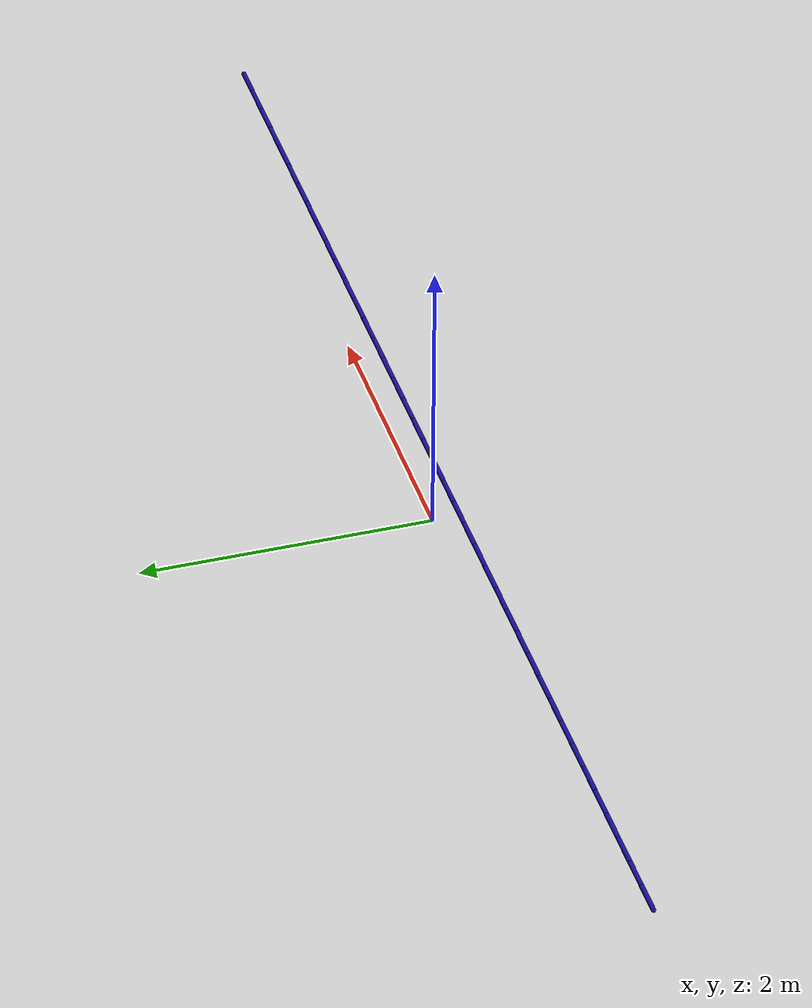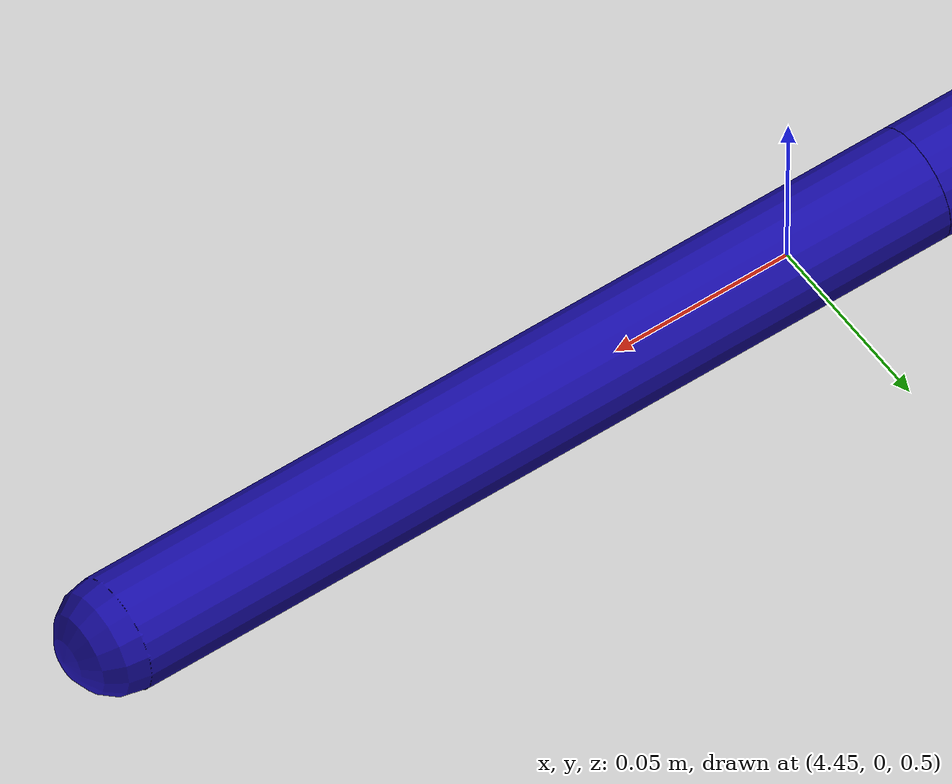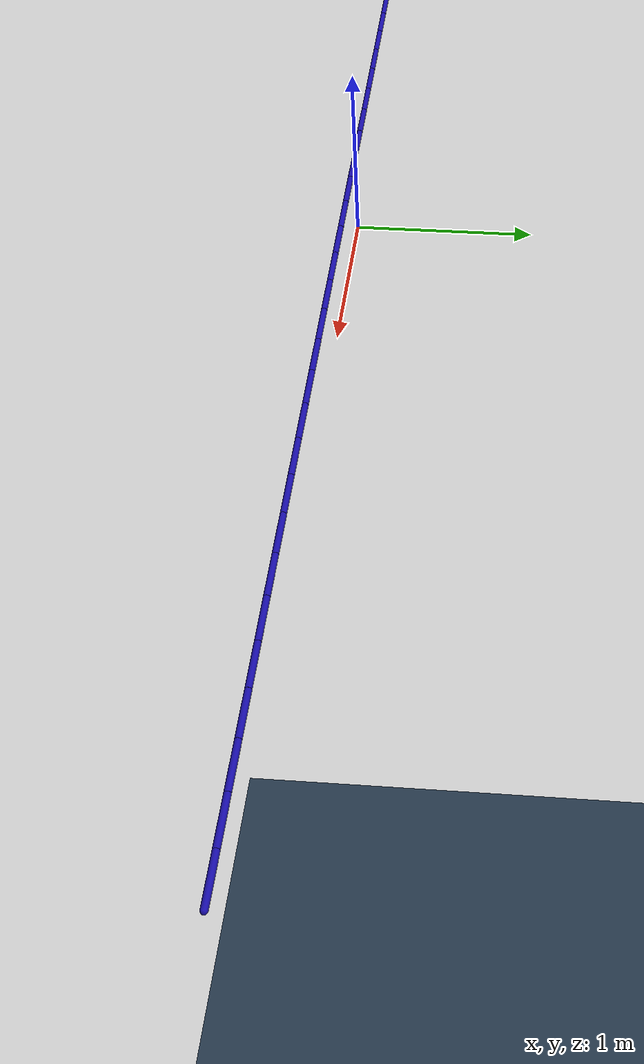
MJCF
<mujoco model="base">
  <compiler angle="radian"/>

  <option timestep="0.0015" tolerance="1e-10" integrator="implicit" cone="elliptic" jacobian="sparse" iterations="30"/>

  <size njmax="5000" nconmax="5000"/>

  <visual>
    <quality shadowsize="2048"/>
    <map stiffness="700" fogstart="10" fogend="15" znear="0.001" zfar="40" shadowscale="0.5"/>
    <rgba haze="0.15 0.25 0.35 1"/>
  </visual>

  <statistic meansize="0.05" extent="2"/>

  <asset>
    <texture type="skybox" builtin="gradient" rgb1="1 1 0.9" rgb2="0.9 0.9 0.81" width="512" height="3072"/>
    <texture type="2d" name="texplane" builtin="checker" mark="cross" rgb1="0.2 0.3 0.4" rgb2="0.1 0.15 0.2" markrgb="0.8 0.8 0.8" width="512" height="512"/>
    <material name="matplane" texture="texplane" texuniform="true" reflectance="0.3"/>
  </asset>

  <worldbody>
    <geom name="floor" size="3 3 0.125" pos="0 0 -10" type="plane" condim="1" material="matplane"/>
    <camera pos="0 -1 1.5" quat="0.866019 0.500011 0 0"/>
    <camera pos="1 -1.2 0.8" quat="0.687095 0.527073 0.304042 0.397055"/>
    <camera pos="-1.8 -1.1 0.7" quat="0.732963 0.562422 -0.232963 -0.303603"/>
    <camera pos="-1 -1.5 0.5" quat="0.707107 0.707107 0 0"/>
    <camera pos="9.7 -1 1.1" quat="0.687095 0.527073 0.304042 0.397055"/>
    <camera pos="4.5 -8 0.5" quat="0.707107 0.707107 0 0"/>
    <light pos="0 0 5" dir="0 0 -1" directional="true" castshadow="false" diffuse="0.4 0.4 0.4" specular="0.1 0.1 0.1"/>
    <light pos="0 0 4" dir="0 0 -1" directional="true" diffuse="0.6 0.6 0.6" specular="0.2 0.2 0.2"/>
    <body name="eef_body" pos="-4.645 0 0.5">
      <geom name="eef_geom" size="0.03 0.03 0.06" type="box" contype="0" conaffinity="0" mass="1" rgba="0.8 0.2 0.1 0"/>
    </body>
    <body name="eef_body2" pos="4.645 0 0.5">
      <geom name="eef_geom2" size="0.03 0.03 0.06" type="box" contype="0" conaffinity="0" mass="1" rgba="0.8 0.2 0.1 0"/>
    </body>
    <body name="stiffrope" pos="4.645 0 0.5" quat="0 0 1 0">
      <joint name="freejoint_A" type="free" limited="false" actuatorfrclimited="false"/>
      <site name="ft_rope" pos="0 0 0" size="0.03" group="1" rgba="1 0 0 0"/>
      <body name="B_first">
        <geom name="G0" size="0.015 0.1161" pos="0.116125 0 0" quat="0.707107 0 -0.707107 0" type="capsule" contype="0" conaffinity="0" condim="1" solref="0.001" rgba="0.1 0.0533333 0.673333 1"/>
        <site name="S_first" pos="0 0 0" size="0.0135"/>
        <site name="S_0" pos="0 0 0" size="0.0135" rgba="0 0 0 0"/>
        <site name="twistcylx_1" pos="0 0 0.05" quat="0.707107 0 0 -0.707107" size="0.001 0.05" group="1" type="cylinder" rgba="0 0 1 0"/>
        <site name="twistcyly_1" pos="0 0.05 0" quat="0.707107 -0.707107 0 0" size="0.001 0.05" group="1" type="cylinder" rgba="1 1 0 0"/>
        <body name="B_1" pos="0.23225 0 0">
          <joint name="J_1" pos="0 0 0" type="ball" actuatorfrclimited="false" damping="1"/>
          <geom name="G1" size="0.015 0.1161" pos="0.116125 0 0" quat="0.707107 0 -0.707107 0" type="capsule" contype="0" conaffinity="0" condim="1" solref="0.001" rgba="0.1 0.0533333 0.673333 1"/>
          <site name="S_1" pos="0 0 0" size="0.0135" rgba="0 0 0 0"/>
          <body name="B_2" pos="0.23225 0 0">
            <joint name="J_2" pos="0 0 0" type="ball" actuatorfrclimited="false" damping="1"/>
            <geom name="G2" size="0.015 0.1161" pos="0.116125 0 0" quat="0.707107 0 -0.707107 0" type="capsule" contype="0" conaffinity="0" condim="1" solref="0.001" rgba="0.1 0.0533333 0.673333 1"/>
            <site name="S_2" pos="0 0 0" size="0.0135" rgba="0 0 0 0"/>
            <body name="B_3" pos="0.23225 0 0">
              <joint name="J_3" pos="0 0 0" type="ball" actuatorfrclimited="false" damping="1"/>
              <geom name="G3" size="0.015 0.1161" pos="0.116125 0 0" quat="0.707107 0 -0.707107 0" type="capsule" contype="0" conaffinity="0" condim="1" solref="0.001" rgba="0.1 0.0533333 0.673333 1"/>
              <site name="S_3" pos="0 0 0" size="0.0135" rgba="0 0 0 0"/>
              <body name="B_4" pos="0.23225 0 0">
                <joint name="J_4" pos="0 0 0" type="ball" actuatorfrclimited="false" damping="1"/>
                <geom name="G4" size="0.015 0.1161" pos="0.116125 0 0" quat="0.707107 0 -0.707107 0" type="capsule" contype="0" conaffinity="0" condim="1" solref="0.001" rgba="0.1 0.0533333 0.673333 1"/>
                <site name="S_4" pos="0 0 0" size="0.0135" rgba="0 0 0 0"/>
                <body name="B_5" pos="0.23225 0 0">
                  <joint name="J_5" pos="0 0 0" type="ball" actuatorfrclimited="false" damping="1"/>
                  <geom name="G5" size="0.015 0.1161" pos="0.116125 0 0" quat="0.707107 0 -0.707107 0" type="capsule" contype="0" conaffinity="0" condim="1" solref="0.001" rgba="0.1 0.0533333 0.673333 1"/>
                  <site name="S_5" pos="0 0 0" size="0.0135" rgba="0 0 0 0"/>
                  <body name="B_6" pos="0.23225 0 0">
                    <joint name="J_6" pos="0 0 0" type="ball" actuatorfrclimited="false" damping="1"/>
                    <geom name="G6" size="0.015 0.1161" pos="0.116125 0 0" quat="0.707107 0 -0.707107 0" type="capsule" contype="0" conaffinity="0" condim="1" solref="0.001" rgba="0.1 0.0533333 0.673333 1"/>
                    <site name="S_6" pos="0 0 0" size="0.0135" rgba="0 0 0 0"/>
                    <body name="B_7" pos="0.23225 0 0">
                      <joint name="J_7" pos="0 0 0" type="ball" actuatorfrclimited="false" damping="1"/>
                      <geom name="G7" size="0.015 0.1161" pos="0.116125 0 0" quat="0.707107 0 -0.707107 0" type="capsule" contype="0" conaffinity="0" condim="1" solref="0.001" rgba="0.1 0.0533333 0.673333 1"/>
                      <site name="S_7" pos="0 0 0" size="0.0135" rgba="0 0 0 0"/>
                      <body name="B_8" pos="0.23225 0 0">
                        <joint name="J_8" pos="0 0 0" type="ball" actuatorfrclimited="false" damping="1"/>
                        <geom name="G8" size="0.015 0.1161" pos="0.116125 0 0" quat="0.707107 0 -0.707107 0" type="capsule" contype="0" conaffinity="0" condim="1" solref="0.001" rgba="0.1 0.0533333 0.673333 1"/>
                        <site name="S_8" pos="0 0 0" size="0.0135" rgba="0 0 0 0"/>
                        <body name="B_9" pos="0.23225 0 0">
                          <joint name="J_9" pos="0 0 0" type="ball" actuatorfrclimited="false" damping="1"/>
                          <geom name="G9" size="0.015 0.1161" pos="0.116125 0 0" quat="0.707107 0 -0.707107 0" type="capsule" contype="0" conaffinity="0" condim="1" solref="0.001" rgba="0.1 0.0533333 0.673333 1"/>
                          <site name="S_9" pos="0 0 0" size="0.0135" rgba="0 0 0 0"/>
                          <body name="B_10" pos="0.23225 0 0">
                            <joint name="J_10" pos="0 0 0" type="ball" actuatorfrclimited="false" damping="1"/>
                            <geom name="G10" size="0.015 0.1161" pos="0.116125 0 0" quat="0.707107 0 -0.707107 0" type="capsule" contype="0" conaffinity="0" condim="1" solref="0.001" rgba="0.1 0.0533333 0.673333 1"/>
                            <site name="S_10" pos="0 0 0" size="0.0135" rgba="0 0 0 0"/>
                            <body name="B_11" pos="0.23225 0 0">
                              <joint name="J_11" pos="0 0 0" type="ball" actuatorfrclimited="false" damping="1"/>
                              <geom name="G11" size="0.015 0.1161" pos="0.116125 0 0" quat="0.707107 0 -0.707107 0" type="capsule" contype="0" conaffinity="0" condim="1" solref="0.001" rgba="0.1 0.0533333 0.673333 1"/>
                              <site name="S_11" pos="0 0 0" size="0.0135" rgba="0 0 0 0"/>
                              <body name="B_12" pos="0.23225 0 0">
                                <joint name="J_12" pos="0 0 0" type="ball" actuatorfrclimited="false" damping="1"/>
                                <geom name="G12" size="0.015 0.1161" pos="0.116125 0 0" quat="0.707107 0 -0.707107 0" type="capsule" contype="0" conaffinity="0" condim="1" solref="0.001" rgba="0.1 0.0533333 0.673333 1"/>
                                <site name="S_12" pos="0 0 0" size="0.0135" rgba="0 0 0 0"/>
                                <body name="B_13" pos="0.23225 0 0">
                                  <joint name="J_13" pos="0 0 0" type="ball" actuatorfrclimited="false" damping="1"/>
                                  <geom name="G13" size="0.015 0.1161" pos="0.116125 0 0" quat="0.707107 0 -0.707107 0" type="capsule" contype="0" conaffinity="0" condim="1" solref="0.001" rgba="0.1 0.0533333 0.673333 1"/>
                                  <site name="S_13" pos="0 0 0" size="0.0135" rgba="0 0 0 0"/>
                                  <body name="B_14" pos="0.23225 0 0">
                                    <joint name="J_14" pos="0 0 0" type="ball" actuatorfrclimited="false" damping="1"/>
                                    <geom name="G14" size="0.015 0.1161" pos="0.116125 0 0" quat="0.707107 0 -0.707107 0" type="capsule" contype="0" conaffinity="0" condim="1" solref="0.001" rgba="0.1 0.0533333 0.673333 1"/>
                                    <site name="S_14" pos="0 0 0" size="0.0135" rgba="0 0 0 0"/>
                                    <body name="B_15" pos="0.23225 0 0">
                                      <joint name="J_15" pos="0 0 0" type="ball" actuatorfrclimited="false" damping="1"/>
                                      <geom name="G15" size="0.015 0.1161" pos="0.116125 0 0" quat="0.707107 0 -0.707107 0" type="capsule" contype="0" conaffinity="0" condim="1" solref="0.001" rgba="0.1 0.0533333 0.673333 1"/>
                                      <site name="S_15" pos="0 0 0" size="0.0135" rgba="0 0 0 0"/>
                                      <body name="B_16" pos="0.23225 0 0">
                                        <joint name="J_16" pos="0 0 0" type="ball" actuatorfrclimited="false" damping="1"/>
                                        <geom name="G16" size="0.015 0.1161" pos="0.116125 0 0" quat="0.707107 0 -0.707107 0" type="capsule" contype="0" conaffinity="0" condim="1" solref="0.001" rgba="0.1 0.0533333 0.673333 1"/>
                                        <site name="S_16" pos="0 0 0" size="0.0135" rgba="0 0 0 0"/>
                                        <body name="B_17" pos="0.23225 0 0">
                                          <joint name="J_17" pos="0 0 0" type="ball" actuatorfrclimited="false" damping="1"/>
                                          <geom name="G17" size="0.015 0.1161" pos="0.116125 0 0" quat="0.707107 0 -0.707107 0" type="capsule" contype="0" conaffinity="0" condim="1" solref="0.001" rgba="0.1 0.0533333 0.673333 1"/>
                                          <site name="S_17" pos="0 0 0" size="0.0135" rgba="0 0 0 0"/>
                                          <body name="B_18" pos="0.23225 0 0">
                                            <joint name="J_18" pos="0 0 0" type="ball" actuatorfrclimited="false" damping="1"/>
                                            <geom name="G18" size="0.015 0.1161" pos="0.116125 0 0" quat="0.707107 0 -0.707107 0" type="capsule" contype="0" conaffinity="0" condim="1" solref="0.001" rgba="0.1 0.0533333 0.673333 1"/>
                                            <site name="S_18" pos="0 0 0" size="0.0135" rgba="0 0 0 0"/>
                                            <body name="B_19" pos="0.23225 0 0">
                                              <joint name="J_19" pos="0 0 0" type="ball" actuatorfrclimited="false" damping="1"/>
                                              <geom name="G19" size="0.015 0.1161" pos="0.116125 0 0" quat="0.707107 0 -0.707107 0" type="capsule" contype="0" conaffinity="0" condim="1" solref="0.001" rgba="0.1 0.0533333 0.673333 1"/>
                                              <site name="S_19" pos="0 0 0" size="0.0135" rgba="0 0 0 0"/>
                                              <body name="B_20" pos="0.23225 0 0">
                                                <joint name="J_20" pos="0 0 0" type="ball" actuatorfrclimited="false" damping="1"/>
                                                <geom name="G20" size="0.015 0.1161" pos="0.116125 0 0" quat="0.707107 0 -0.707107 0" type="capsule" contype="0" conaffinity="0" condim="1" solref="0.001" rgba="0.1 0.0533333 0.673333 1"/>
                                                <site name="S_20" pos="0 0 0" size="0.0135" rgba="0 0 0 0"/>
                                                <site name="twistcylx_21" pos="0 0 0.05" quat="0.707107 0 0 -0.707107" size="0.001 0.05" group="1" type="cylinder" rgba="0 0 1 0"/>
                                                <site name="twistcyly_21" pos="0 0.05 0" quat="0.707107 -0.707107 0 0" size="0.001 0.05" group="1" type="cylinder" rgba="1 1 0 0"/>
                                                <body name="B_21" pos="0.23225 0 0">
                                                  <joint name="J_21" pos="0 0 0" type="ball" actuatorfrclimited="false" damping="1"/>
                                                  <geom name="G21" size="0.015 0.1161" pos="0.116125 0 0" quat="0.707107 0 -0.707107 0" type="capsule" contype="0" conaffinity="0" condim="1" solref="0.001" rgba="0.1 0.0533333 0.673333 1"/>
                                                  <site name="S_21" pos="0 0 0" size="0.0135" rgba="0 0 0 0"/>
                                                  <body name="B_22" pos="0.23225 0 0">
                                                    <joint name="J_22" pos="0 0 0" type="ball" actuatorfrclimited="false" damping="1"/>
                                                    <geom name="G22" size="0.015 0.1161" pos="0.116125 0 0" quat="0.707107 0 -0.707107 0" type="capsule" contype="0" conaffinity="0" condim="1" solref="0.001" rgba="0.1 0.0533333 0.673333 1"/>
                                                    <site name="S_22" pos="0 0 0" size="0.0135" rgba="0 0 0 0"/>
                                                    <body name="B_23" pos="0.23225 0 0">
                                                      <joint name="J_23" pos="0 0 0" type="ball" actuatorfrclimited="false" damping="1"/>
                                                      <geom name="G23" size="0.015 0.1161" pos="0.116125 0 0" quat="0.707107 0 -0.707107 0" type="capsule" contype="0" conaffinity="0" condim="1" solref="0.001" rgba="0.1 0.0533333 0.673333 1"/>
                                                      <site name="S_23" pos="0 0 0" size="0.0135" rgba="0 0 0 0"/>
                                                      <body name="B_24" pos="0.23225 0 0">
                                                        <joint name="J_24" pos="0 0 0" type="ball" actuatorfrclimited="false" damping="1"/>
                                                        <geom name="G24" size="0.015 0.1161" pos="0.116125 0 0" quat="0.707107 0 -0.707107 0" type="capsule" contype="0" conaffinity="0" condim="1" solref="0.001" rgba="0.1 0.0533333 0.673333 1"/>
                                                        <site name="S_24" pos="0 0 0" size="0.0135" rgba="0 0 0 0"/>
                                                        <body name="B_25" pos="0.23225 0 0">
                                                          <joint name="J_25" pos="0 0 0" type="ball" actuatorfrclimited="false" damping="1"/>
                                                          <geom name="G25" size="0.015 0.1161" pos="0.116125 0 0" quat="0.707107 0 -0.707107 0" type="capsule" contype="0" conaffinity="0" condim="1" solref="0.001" rgba="0.1 0.0533333 0.673333 1"/>
                                                          <site name="S_25" pos="0 0 0" size="0.0135" rgba="0 0 0 0"/>
                                                          <body name="B_26" pos="0.23225 0 0">
                                                            <joint name="J_26" pos="0 0 0" type="ball" actuatorfrclimited="false" damping="1"/>
                                                            <geom name="G26" size="0.015 0.1161" pos="0.116125 0 0" quat="0.707107 0 -0.707107 0" type="capsule" contype="0" conaffinity="0" condim="1" solref="0.001" rgba="0.1 0.0533333 0.673333 1"/>
                                                            <site name="S_26" pos="0 0 0" size="0.0135" rgba="0 0 0 0"/>
                                                            <body name="B_27" pos="0.23225 0 0">
                                                              <joint name="J_27" pos="0 0 0" type="ball" actuatorfrclimited="false" damping="1"/>
                                                              <geom name="G27" size="0.015 0.1161" pos="0.116125 0 0" quat="0.707107 0 -0.707107 0" type="capsule" contype="0" conaffinity="0" condim="1" solref="0.001" rgba="0.1 0.0533333 0.673333 1"/>
                                                              <site name="S_27" pos="0 0 0" size="0.0135" rgba="0 0 0 0"/>
                                                              <body name="B_28" pos="0.23225 0 0">
                                                                <joint name="J_28" pos="0 0 0" type="ball" actuatorfrclimited="false" damping="1"/>
                                                                <geom name="G28" size="0.015 0.1161" pos="0.116125 0 0" quat="0.707107 0 -0.707107 0" type="capsule" contype="0" conaffinity="0" condim="1" solref="0.001" rgba="0.1 0.0533333 0.673333 1"/>
                                                                <site name="S_28" pos="0 0 0" size="0.0135" rgba="0 0 0 0"/>
                                                                <body name="B_29" pos="0.23225 0 0">
                                                                  <joint name="J_29" pos="0 0 0" type="ball" actuatorfrclimited="false" damping="1"/>
                                                                  <geom name="G29" size="0.015 0.1161" pos="0.116125 0 0" quat="0.707107 0 -0.707107 0" type="capsule" contype="0" conaffinity="0" condim="1" solref="0.001" rgba="0.1 0.0533333 0.673333 1"/>
                                                                  <site name="S_29" pos="0 0 0" size="0.0135" rgba="0 0 0 0"/>
                                                                  <body name="B_30" pos="0.23225 0 0">
                                                                    <joint name="J_30" pos="0 0 0" type="ball" actuatorfrclimited="false" damping="1"/>
                                                                    <geom name="G30" size="0.015 0.1161" pos="0.116125 0 0" quat="0.707107 0 -0.707107 0" type="capsule" contype="0" conaffinity="0" condim="1" solref="0.001" rgba="0.1 0.0533333 0.673333 1"/>
                                                                    <site name="S_30" pos="0 0 0" size="0.0135" rgba="0 0 0 0"/>
                                                                    <body name="B_31" pos="0.23225 0 0">
                                                                      <joint name="J_31" pos="0 0 0" type="ball" actuatorfrclimited="false" damping="1"/>
                                                                      <geom name="G31" size="0.015 0.1161" pos="0.116125 0 0" quat="0.707107 0 -0.707107 0" type="capsule" contype="0" conaffinity="0" condim="1" solref="0.001" rgba="0.1 0.0533333 0.673333 1"/>
                                                                      <site name="S_31" pos="0 0 0" size="0.0135" rgba="0 0 0 0"/>
                                                                      <body name="B_32" pos="0.23225 0 0">
                                                                        <joint name="J_32" pos="0 0 0" type="ball" actuatorfrclimited="false" damping="1"/>
                                                                        <geom name="G32" size="0.015 0.1161" pos="0.116125 0 0" quat="0.707107 0 -0.707107 0" type="capsule" contype="0" conaffinity="0" condim="1" solref="0.001" rgba="0.1 0.0533333 0.673333 1"/>
                                                                        <site name="S_32" pos="0 0 0" size="0.0135" rgba="0 0 0 0"/>
                                                                        <body name="B_33" pos="0.23225 0 0">
                                                                          <joint name="J_33" pos="0 0 0" type="ball" actuatorfrclimited="false" damping="1"/>
                                                                          <geom name="G33" size="0.015 0.1161" pos="0.116125 0 0" quat="0.707107 0 -0.707107 0" type="capsule" contype="0" conaffinity="0" condim="1" solref="0.001" rgba="0.1 0.0533333 0.673333 1"/>
                                                                          <site name="S_33" pos="0 0 0" size="0.0135" rgba="0 0 0 0"/>
                                                                          <body name="B_34" pos="0.23225 0 0">
                                                                            <joint name="J_34" pos="0 0 0" type="ball" actuatorfrclimited="false" damping="1"/>
                                                                            <geom name="G34" size="0.015 0.1161" pos="0.116125 0 0" quat="0.707107 0 -0.707107 0" type="capsule" contype="0" conaffinity="0" condim="1" solref="0.001" rgba="0.1 0.0533333 0.673333 1"/>
                                                                            <site name="S_34" pos="0 0 0" size="0.0135" rgba="0 0 0 0"/>
                                                                            <body name="B_35" pos="0.23225 0 0">
                                                                              <joint name="J_35" pos="0 0 0" type="ball" actuatorfrclimited="false" damping="1"/>
                                                                              <geom name="G35" size="0.015 0.1161" pos="0.116125 0 0" quat="0.707107 0 -0.707107 0" type="capsule" contype="0" conaffinity="0" condim="1" solref="0.001" rgba="0.1 0.0533333 0.673333 1"/>
                                                                              <site name="S_35" pos="0 0 0" size="0.0135" rgba="0 0 0 0"/>
                                                                              <body name="B_36" pos="0.23225 0 0">
                                                                                <joint name="J_36" pos="0 0 0" type="ball" actuatorfrclimited="false" damping="1"/>
                                                                                <geom name="G36" size="0.015 0.1161" pos="0.116125 0 0" quat="0.707107 0 -0.707107 0" type="capsule" contype="0" conaffinity="0" condim="1" solref="0.001" rgba="0.1 0.0533333 0.673333 1"/>
                                                                                <site name="S_36" pos="0 0 0" size="0.0135" rgba="0 0 0 0"/>
                                                                                <body name="B_37" pos="0.23225 0 0">
                                                                                  <joint name="J_37" pos="0 0 0" type="ball" actuatorfrclimited="false" damping="1"/>
                                                                                  <geom name="G37" size="0.015 0.1161" pos="0.116125 0 0" quat="0.707107 0 -0.707107 0" type="capsule" contype="0" conaffinity="0" condim="1" solref="0.001" rgba="0.1 0.0533333 0.673333 1"/>
                                                                                  <site name="S_37" pos="0 0 0" size="0.0135" rgba="0 0 0 0"/>
                                                                                  <body name="B_38" pos="0.23225 0 0">
                                                                                    <joint name="J_38" pos="0 0 0" type="ball" actuatorfrclimited="false" damping="1"/>
                                                                                    <geom name="G38" size="0.015 0.1161" pos="0.116125 0 0" quat="0.707107 0 -0.707107 0" type="capsule" contype="0" conaffinity="0" condim="1" solref="0.001" rgba="0.1 0.0533333 0.673333 1"/>
                                                                                    <site name="S_38" pos="0 0 0" size="0.0135" rgba="0 0 0 0"/>
                                                                                    <body name="B_last" pos="0.23225 0 0">
                                                                                      <joint name="J_last" pos="0 0 0" type="ball" actuatorfrclimited="false" damping="1"/>
                                                                                      <geom name="G39" size="0.015 0.1161" pos="0.116125 0 0" quat="0.707107 0 -0.707107 0" type="capsule" contype="0" conaffinity="0" condim="1" solref="0.001" rgba="0.1 0.0533333 0.673333 1"/>
                                                                                      <site name="S_39" pos="0 0 0" size="0.0135" rgba="0 0 0 0"/>
                                                                                      <site name="twistcylx_40" pos="0 0 0.05" quat="0.707107 0 0 -0.707107" size="0.001 0.05" group="1" type="cylinder" rgba="0 0 1 0"/>
                                                                                      <site name="twistcyly_40" pos="0 0.05 0" quat="0.707107 -0.707107 0 0" size="0.001 0.05" group="1" type="cylinder" rgba="1 1 0 0"/>
                                                                                      <site name="S_last" pos="0.23225 0 0" size="0.0135"/>
                                                                                      <body name="B_last2" pos="0.23225 0 0"/>
                                                                                    </body>
                                                                                  </body>
                                                                                </body>
                                                                              </body>
                                                                            </body>
                                                                          </body>
                                                                        </body>
                                                                      </body>
                                                                    </body>
                                                                  </body>
                                                                </body>
                                                              </body>
                                                            </body>
                                                          </body>
                                                        </body>
                                                      </body>
                                                    </body>
                                                  </body>
                                                </body>
                                              </body>
                                            </body>
                                          </body>
                                        </body>
                                      </body>
                                    </body>
                                  </body>
                                </body>
                              </body>
                            </body>
                          </body>
                        </body>
                      </body>
                    </body>
                  </body>
                </body>
              </body>
            </body>
          </body>
        </body>
      </body>
    </body>
  </worldbody>

  <contact>
    <exclude body1="eef_body" body2="B_first"/>
    <exclude body1="eef_body" body2="B_38"/>
    <exclude body1="eef_body" body2="B_last"/>
    <exclude body1="B_first" body2="B_1"/>
    <exclude body1="B_first" body2="B_38"/>
    <exclude body1="B_first" body2="B_last"/>
    <exclude body1="B_1" body2="B_2"/>
    <exclude body1="B_1" body2="B_last"/>
    <exclude body1="B_2" body2="B_3"/>
    <exclude body1="B_3" body2="B_4"/>
    <exclude body1="B_4" body2="B_5"/>
    <exclude body1="B_5" body2="B_6"/>
    <exclude body1="B_6" body2="B_7"/>
    <exclude body1="B_7" body2="B_8"/>
    <exclude body1="B_8" body2="B_9"/>
    <exclude body1="B_9" body2="B_10"/>
    <exclude body1="B_10" body2="B_11"/>
    <exclude body1="B_11" body2="B_12"/>
    <exclude body1="B_12" body2="B_13"/>
    <exclude body1="B_13" body2="B_14"/>
    <exclude body1="B_14" body2="B_15"/>
    <exclude body1="B_15" body2="B_16"/>
    <exclude body1="B_16" body2="B_17"/>
    <exclude body1="B_17" body2="B_18"/>
    <exclude body1="B_18" body2="B_19"/>
    <exclude body1="B_19" body2="B_20"/>
    <exclude body1="B_20" body2="B_21"/>
    <exclude body1="B_21" body2="B_22"/>
    <exclude body1="B_22" body2="B_23"/>
    <exclude body1="B_23" body2="B_24"/>
    <exclude body1="B_24" body2="B_25"/>
    <exclude body1="B_25" body2="B_26"/>
    <exclude body1="B_26" body2="B_27"/>
    <exclude body1="B_27" body2="B_28"/>
    <exclude body1="B_28" body2="B_29"/>
    <exclude body1="B_29" body2="B_30"/>
    <exclude body1="B_30" body2="B_31"/>
    <exclude body1="B_31" body2="B_32"/>
    <exclude body1="B_32" body2="B_33"/>
    <exclude body1="B_33" body2="B_34"/>
    <exclude body1="B_34" body2="B_35"/>
    <exclude body1="B_35" body2="B_36"/>
    <exclude body1="B_36" body2="B_37"/>
    <exclude body1="B_37" body2="B_38"/>
    <exclude body1="B_38" body2="B_last"/>
  </contact>

  <equality>
    <weld body1="B_last" body2="eef_body" anchor="0 0 0" relpose="0.23225 0 0 0 0 -1 0" torquescale="1" solref="0.001"/>
    <weld body1="B_first" body2="eef_body2" anchor="0 0 0" relpose="0 0 0 0 0 -1 0" torquescale="1" solref="0.001"/>
  </equality>
</mujoco>
